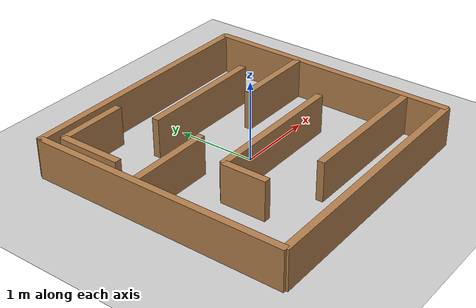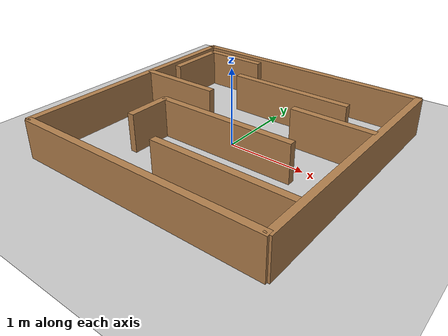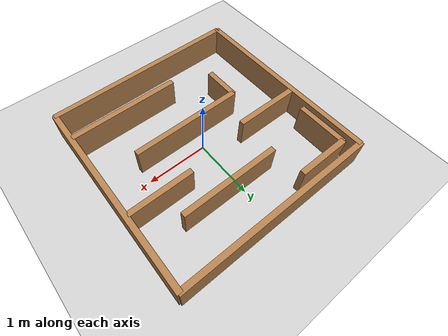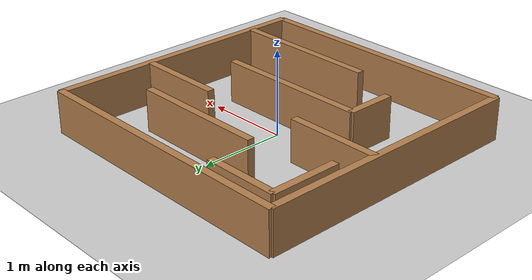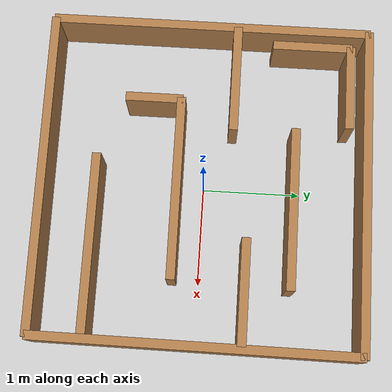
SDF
<?xml version='1.0' encoding='utf-8'?>
<sdf version="1.7">
  <world name="default">
    <light name="sun" type="directional">
      <cast_shadows>1</cast_shadows>
      <pose>0 0 10 0 -0 0</pose>
      <diffuse>0.8 0.8 0.8 1</diffuse>
      <specular>0.2 0.2 0.2 1</specular>
      <attenuation>
        <range>1000</range>
        <constant>0.9</constant>
        <linear>0.01</linear>
        <quadratic>0.001</quadratic>
      </attenuation>
      <direction>-0.5 0.1 -0.9</direction>
      <spot>
        <inner_angle>0</inner_angle>
        <outer_angle>0</outer_angle>
        <falloff>0</falloff>
      </spot>
    </light>
    <model name="ground_plane">
      <static>1</static>
      <scale>0.13 0.13 0.2</scale>
      <link name="link">
        <collision name="collision">
          <geometry>
            <plane>
              <normal>0 0 1</normal>
              <size>100 100</size>
            </plane>
          </geometry>
          <surface>
            <friction>
              <ode>
                <mu>100</mu>
                <mu2>50</mu2>
              </ode>
              <torsional>
                <ode />
              </torsional>
            </friction>
            <contact>
              <ode />
            </contact>
            <bounce />
          </surface>
          <max_contacts>10</max_contacts>
        </collision>
        <visual name="visual">
          <cast_shadows>0</cast_shadows>
          <geometry>
            <plane>
              <normal>0 0 1</normal>
              <size>25 25</size>
            </plane>
          </geometry>
          <material>
            <script>
              <uri>file://media/materials/scripts/gazebo.material</uri>
              <name>Gazebo/Grey</name>
            </script>
          </material>
        </visual>
        <self_collide>0</self_collide>
        <enable_wind>0</enable_wind>
        <kinematic>0</kinematic>
      </link>
    </model>
    <gravity>0 0 -9.8</gravity>
    <magnetic_field>6e-06 2.3e-05 -4.2e-05</magnetic_field>
    <atmosphere type="adiabatic" />
    <physics type="ode">
      <max_step_size>0.001</max_step_size>
      <real_time_factor>1</real_time_factor>
      <real_time_update_rate>1000</real_time_update_rate>
    </physics>
    <scene>
      <ambient>0.4 0.4 0.4 1</ambient>
      <background>0.7 0.7 0.7 1</background>
      <shadows>1</shadows>
    </scene>
    <audio>
      <device>default</device>
    </audio>
    <wind />
    <spherical_coordinates>
      <surface_model>EARTH_WGS84</surface_model>
      <latitude_deg>0</latitude_deg>
      <longitude_deg>0</longitude_deg>
      <elevation>0</elevation>
      <heading_deg>0</heading_deg>
    </spherical_coordinates>

    <model name="proj2">
      <pose>0 0 0 0 0 0</pose>
      <link name="Wall_0">
        <collision name="Wall_0_Collision">
          <geometry>
            <box>
              <size>3.2832000000000003 0.09000000000000001 0.5</size>
            </box>
          </geometry>
          <pose>0.0 0.0 0.25 0.0 -0.0 0.0</pose>
          <max_contacts>10</max_contacts>
          <surface>
            <contact>
              <ode />
            </contact>
            <bounce />
            <friction>
              <torsional>
                <ode />
              </torsional>
              <ode />
            </friction>
          </surface>
        </collision>
        <visual name="Wall_0_Visual">
          <pose>0.0 0.0 0.25 0.0 -0.0 0.0</pose>
          <geometry>
            <box>
              <size>3.2832000000000003 0.09000000000000001 0.5</size>
            </box>
          </geometry>
          <material>
            <script>
              <uri>file://media/materials/scripts/gazebo.material</uri>
              <name>Gazebo/Wood</name>
            </script>
            <ambient>1 1 1 1</ambient>
          </material>
          <meta>
            <layer>0</layer>
          </meta>
        </visual>
        <pose>-1.641024 -0.003618 0.0 0.0 -0.0 -1.5708</pose>
        <self_collide>0</self_collide>
        <enable_wind>0</enable_wind>
        <kinematic>0</kinematic>
      </link>

      <link name="Wall_11">
        <collision name="Wall_11_Collision">
          <geometry>
            <box>
              <size>1.053 0.09000000000000001 0.5</size>
            </box>
          </geometry>
          <pose>0.0 0.0 0.25 0.0 -0.0 0.0</pose>
          <max_contacts>10</max_contacts>
          <surface>
            <contact>
              <ode />
            </contact>
            <bounce />
            <friction>
              <torsional>
                <ode />
              </torsional>
              <ode />
            </friction>
          </surface>
        </collision>
        <visual name="Wall_11_Visual">
          <pose>0.0 0.0 0.25 0.0 -0.0 0.0</pose>
          <geometry>
            <box>
              <size>1.053 0.09000000000000001 0.5</size>
            </box>
          </geometry>
          <material>
            <script>
              <uri>file://media/materials/scripts/gazebo.material</uri>
              <name>Gazebo/Wood</name>
            </script>
            <ambient>1 1 1 1</ambient>
          </material>
          <meta>
            <layer>0</layer>
          </meta>
        </visual>
        <pose>1.081692 0.454914 0.0 0.0 -0.0 0.0</pose>
        <self_collide>0</self_collide>
        <enable_wind>0</enable_wind>
        <kinematic>0</kinematic>
      </link>

      <link name="Wall_13">
        <collision name="Wall_13_Collision">
          <geometry>
            <box>
              <size>1.1115 0.09000000000000001 0.5</size>
            </box>
          </geometry>
          <pose>0.0 0.0 0.25 0.0 -0.0 0.0</pose>
          <max_contacts>10</max_contacts>
          <surface>
            <contact>
              <ode />
            </contact>
            <bounce />
            <friction>
              <torsional>
                <ode />
              </torsional>
              <ode />
            </friction>
          </surface>
        </collision>
        <visual name="Wall_13_Visual">
          <pose>0.0 0.0 0.25 0.0 -0.0 0.0</pose>
          <geometry>
            <box>
              <size>1.1115 0.09000000000000001 0.5</size>
            </box>
          </geometry>
          <material>
            <script>
              <uri>file://media/materials/scripts/gazebo.material</uri>
              <name>Gazebo/Wood</name>
            </script>
            <ambient>1 1 1 1</ambient>
          </material>
          <meta>
            <layer>0</layer>
          </meta>
        </visual>
        <pose>-1.090044 0.269856 0.0 0.0 -0.0 3.14159</pose>
        <self_collide>0</self_collide>
        <enable_wind>0</enable_wind>
        <kinematic>0</kinematic>
      </link>

      <link name="Wall_15">
        <collision name="Wall_15_Collision">
          <geometry>
            <box>
              <size>0.5850000000000001 0.09000000000000001 0.5</size>
            </box>
          </geometry>
          <pose>0.0 0.0 0.25 0.0 -0.0 0.0</pose>
          <max_contacts>10</max_contacts>
          <surface>
            <contact>
              <ode />
            </contact>
            <bounce />
            <friction>
              <torsional>
                <ode />
              </torsional>
              <ode />
            </friction>
          </surface>
        </collision>
        <visual name="Wall_15_Visual">
          <pose>0.0 0.0 0.25 0.0 -0.0 0.0</pose>
          <geometry>
            <box>
              <size>0.5850000000000001 0.09000000000000001 0.5</size>
            </box>
          </geometry>
          <material>
            <script>
              <uri>file://media/materials/scripts/gazebo.material</uri>
              <name>Gazebo/Wood</name>
            </script>
            <ambient>1 1 1 1</ambient>
          </material>
          <meta>
            <layer>0</layer>
          </meta>
        </visual>
        <pose>-0.8294400000000001 -0.54603 0.0 0.0 -0.0 -1.5708</pose>
        <self_collide>0</self_collide>
        <enable_wind>0</enable_wind>
        <kinematic>0</kinematic>
      </link>

      <link name="Wall_17">
        <collision name="Wall_17_Collision">
          <geometry>
            <box>
              <size>1.85724 0.09000000000000001 0.5</size>
            </box>
          </geometry>
          <pose>0.0 0.0 0.25 0.0 -0.0 0.0</pose>
          <max_contacts>10</max_contacts>
          <surface>
            <contact>
              <ode />
            </contact>
            <bounce />
            <friction>
              <torsional>
                <ode />
              </torsional>
              <ode />
            </friction>
          </surface>
        </collision>
        <visual name="Wall_17_Visual">
          <pose>0.0 0.0 0.25 0.0 -0.0 0.0</pose>
          <geometry>
            <box>
              <size>1.85724 0.09000000000000001 0.5</size>
            </box>
          </geometry>
          <material>
            <script>
              <uri>file://media/materials/scripts/gazebo.material</uri>
              <name>Gazebo/Wood</name>
            </script>
            <ambient>1 1 1 1</ambient>
          </material>
          <meta>
            <layer>0</layer>
          </meta>
        </visual>
        <pose>0.08163 -0.267534 0.0 0.0 -0.0 -3.13769</pose>
        <self_collide>0</self_collide>
        <enable_wind>0</enable_wind>
        <kinematic>0</kinematic>
      </link>

      <link name="Wall_19">
        <collision name="Wall_19_Collision">
          <geometry>
            <box>
              <size>1.8135 0.09000000000000001 0.5</size>
            </box>
          </geometry>
          <pose>0.0 0.0 0.25 0.0 -0.0 0.0</pose>
          <max_contacts>10</max_contacts>
          <surface>
            <contact>
              <ode />
            </contact>
            <bounce />
            <friction>
              <torsional>
                <ode />
              </torsional>
              <ode />
            </friction>
          </surface>
        </collision>
        <visual name="Wall_19_Visual">
          <pose>0.0 0.0 0.25 0.0 -0.0 0.0</pose>
          <geometry>
            <box>
              <size>1.8135 0.09000000000000001 0.5</size>
            </box>
          </geometry>
          <material>
            <script>
              <uri>file://media/materials/scripts/gazebo.material</uri>
              <name>Gazebo/Wood</name>
            </script>
            <ambient>1 1 1 1</ambient>
          </material>
          <meta>
            <layer>0</layer>
          </meta>
        </visual>
        <pose>0.6932339999999999 -1.082502 0.0 0.0 -0.0 0.0</pose>
        <self_collide>0</self_collide>
        <enable_wind>0</enable_wind>
        <kinematic>0</kinematic>
      </link>

      <link name="Wall_22">
        <collision name="Wall_22_Collision">
          <geometry>
            <box>
              <size>0.819 0.09000000000000001 0.5</size>
            </box>
          </geometry>
          <pose>0.0 0.0 0.25 0.0 -0.0 0.0</pose>
          <max_contacts>10</max_contacts>
          <surface>
            <contact>
              <ode />
            </contact>
            <bounce />
            <friction>
              <torsional>
                <ode />
              </torsional>
              <ode />
            </friction>
          </surface>
        </collision>
        <visual name="Wall_22_Visual">
          <pose>0.0 0.0 0.25 0.0 -0.0 0.0</pose>
          <geometry>
            <box>
              <size>0.819 0.09000000000000001 0.5</size>
            </box>
          </geometry>
          <material>
            <script>
              <uri>file://media/materials/scripts/gazebo.material</uri>
              <name>Gazebo/Wood</name>
            </script>
            <ambient>1 1 1 1</ambient>
          </material>
          <meta>
            <layer>0</layer>
          </meta>
        </visual>
        <pose>-1.471086 1.048014 0.0 0.0 -0.0 1.5708</pose>
        <self_collide>0</self_collide>
        <enable_wind>0</enable_wind>
        <kinematic>0</kinematic>
      </link>

      <link name="Wall_23">
        <collision name="Wall_23_Collision">
          <geometry>
            <box>
              <size>0.8775 0.09000000000000001 0.5</size>
            </box>
          </geometry>
          <pose>0.0 0.0 0.25 0.0 -0.0 0.0</pose>
          <max_contacts>10</max_contacts>
          <surface>
            <contact>
              <ode />
            </contact>
            <bounce />
            <friction>
              <torsional>
                <ode />
              </torsional>
              <ode />
            </friction>
          </surface>
        </collision>
        <visual name="Wall_23_Visual">
          <pose>0.0 0.0 0.25 0.0 -0.0 0.0</pose>
          <geometry>
            <box>
              <size>0.8775 0.09000000000000001 0.5</size>
            </box>
          </geometry>
          <material>
            <script>
              <uri>file://media/materials/scripts/gazebo.material</uri>
              <name>Gazebo/Wood</name>
            </script>
            <ambient>1 1 1 1</ambient>
          </material>
          <meta>
            <layer>0</layer>
          </meta>
        </visual>
        <pose>-1.0498859999999999 1.439964 0.0 0.0 -0.0 0.0</pose>
        <self_collide>0</self_collide>
        <enable_wind>0</enable_wind>
        <kinematic>0</kinematic>
      </link>

      <link name="Wall_3">
        <collision name="Wall_3_Collision">
          <geometry>
            <box>
              <size>3.2832000000000003 0.09000000000000001 0.5</size>
            </box>
          </geometry>
          <pose>0.0 0.0 0.25 0.0 -0.0 0.0</pose>
          <max_contacts>10</max_contacts>
          <surface>
            <contact>
              <ode />
            </contact>
            <bounce />
            <friction>
              <torsional>
                <ode />
              </torsional>
              <ode />
            </friction>
          </surface>
        </collision>
        <visual name="Wall_3_Visual">
          <pose>0.0 0.0 0.25 0.0 -0.0 0.0</pose>
          <geometry>
            <box>
              <size>3.2832000000000003 0.09000000000000001 0.5</size>
            </box>
          </geometry>
          <material>
            <script>
              <uri>file://media/materials/scripts/gazebo.material</uri>
              <name>Gazebo/Wood</name>
            </script>
            <ambient>1 1 1 1</ambient>
          </material>
          <meta>
            <layer>0</layer>
          </meta>
        </visual>
        <pose>-0.0099 -1.6169580000000001 0.0 0.0 -0.0 0.006574</pose>
        <self_collide>0</self_collide>
        <enable_wind>0</enable_wind>
        <kinematic>0</kinematic>
      </link>

      <link name="Wall_6">
        <collision name="Wall_6_Collision">
          <geometry>
            <box>
              <size>3.26916 0.09000000000000001 0.5</size>
            </box>
          </geometry>
          <pose>0.0 0.0 0.25 0.0 -0.0 0.0</pose>
          <max_contacts>10</max_contacts>
          <surface>
            <contact>
              <ode />
            </contact>
            <bounce />
            <friction>
              <torsional>
                <ode />
              </torsional>
              <ode />
            </friction>
          </surface>
        </collision>
        <visual name="Wall_6_Visual">
          <pose>0.0 0.0 0.25 0.0 -0.0 0.0</pose>
          <geometry>
            <box>
              <size>3.26916 0.09000000000000001 0.5</size>
            </box>
          </geometry>
          <material>
            <script>
              <uri>file://media/materials/scripts/gazebo.material</uri>
              <name>Gazebo/Wood</name>
            </script>
            <ambient>1 1 1 1</ambient>
          </material>
          <meta>
            <layer>0</layer>
          </meta>
        </visual>
        <pose>1.6283519999999998 0.01062 0.0 0.0 -0.0 1.56199</pose>
        <self_collide>0</self_collide>
        <enable_wind>0</enable_wind>
        <kinematic>0</kinematic>
      </link>

      <link name="Wall_7">
        <collision name="Wall_7_Collision">
          <geometry>
            <box>
              <size>3.3345 0.09000000000000001 0.5</size>
            </box>
          </geometry>
          <pose>0.0 0.0 0.25 0.0 -0.0 0.0</pose>
          <max_contacts>10</max_contacts>
          <surface>
            <contact>
              <ode />
            </contact>
            <bounce />
            <friction>
              <torsional>
                <ode />
              </torsional>
              <ode />
            </friction>
          </surface>
        </collision>
        <visual name="Wall_7_Visual">
          <pose>0.0 0.0 0.25 0.0 -0.0 0.0</pose>
          <geometry>
            <box>
              <size>3.3345 0.09000000000000001 0.5</size>
            </box>
          </geometry>
          <material>
            <script>
              <uri>file://media/materials/scripts/gazebo.material</uri>
              <name>Gazebo/Wood</name>
            </script>
            <ambient>1 1 1 1</ambient>
          </material>
          <meta>
            <layer>0</layer>
          </meta>
        </visual>
        <pose>0.0 1.627506 0.0 0.0 -0.0 3.14159</pose>
        <self_collide>0</self_collide>
        <enable_wind>0</enable_wind>
        <kinematic>0</kinematic>
      </link>

      <link name="Wall_9">
        <collision name="Wall_9_Collision">
          <geometry>
            <box>
              <size>1.638 0.09000000000000001 0.5</size>
            </box>
          </geometry>
          <pose>0.0 0.0 0.25 0.0 -0.0 0.0</pose>
          <max_contacts>10</max_contacts>
          <surface>
            <contact>
              <ode />
            </contact>
            <bounce />
            <friction>
              <torsional>
                <ode />
              </torsional>
              <ode />
            </friction>
          </surface>
        </collision>
        <visual name="Wall_9_Visual">
          <pose>0.0 0.0 0.25 0.0 -0.0 0.0</pose>
          <geometry>
            <box>
              <size>1.638 0.09000000000000001 0.5</size>
            </box>
          </geometry>
          <material>
            <script>
              <uri>file://media/materials/scripts/gazebo.material</uri>
              <name>Gazebo/Wood</name>
            </script>
            <ambient>1 1 1 1</ambient>
          </material>
          <meta>
            <layer>0</layer>
          </meta>
        </visual>
        <pose>0.23536799999999997 0.90333 0.0 0.0 -0.0 0.0</pose>
        <self_collide>0</self_collide>
        <enable_wind>0</enable_wind>
        <kinematic>0</kinematic>
      </link>
      <static>1</static>
    </model>

    <gui fullscreen="0">
      <camera name="user_camera">
        <pose>0 0 8.0 0 1.570796 1.570796</pose>
        <view_controller>orbit</view_controller>
        <projection_type>perspective</projection_type>
      </camera>
    </gui>
  </world>
</sdf>
